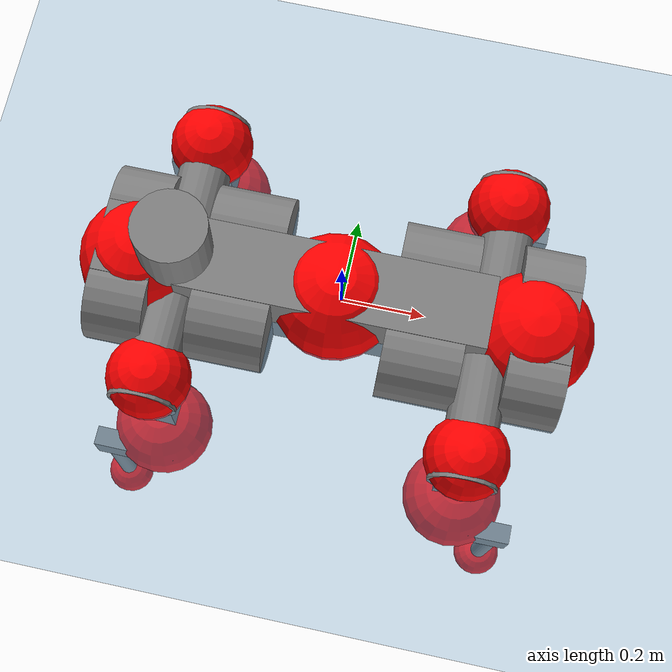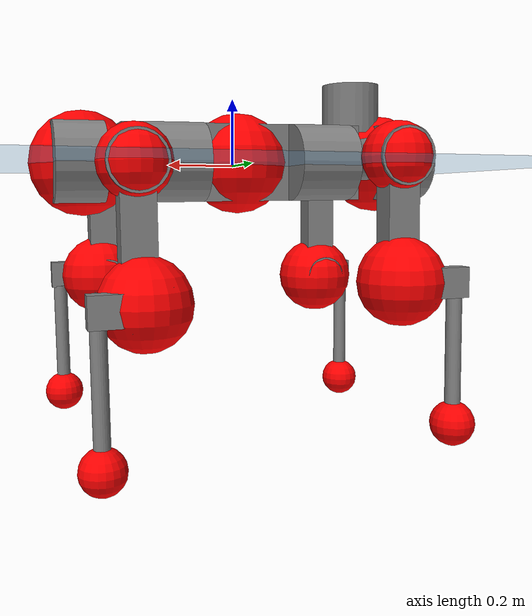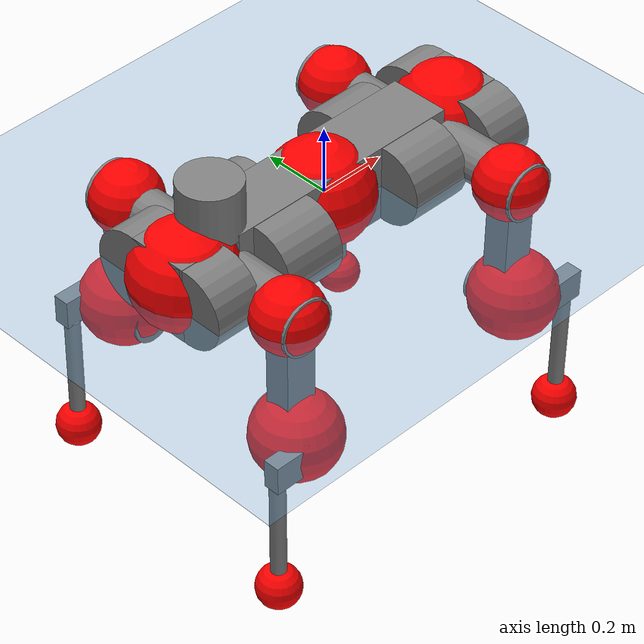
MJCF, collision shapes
<mujoco model="anymal_c">
  <compiler angle="radian" assetdir="assets" balanceinertia="true" inertiafromgeom="false"/>

  <option timestep="0.005" density="1.2" viscosity="2e-05"/>

  <size nkey="1"/>

  <visual>
    <quality shadowsize="8192"/>
    <map shadowclip="0.5"/>
  </visual>

  <default>
    <default class="/">
      <material specular="0" shininess="0.25"/>
      <geom contype="0" conaffinity="0" group="1" solref="-1000 -80"/>
      <site size="0.01 0.005 0.005" group="5"/>
      <general forcelimited="true" forcerange="-80 80" biastype="affine" gainprm="80" biasprm="0 -80 -2"/>
      <default class="anymal_c">
        <joint armature="0.01" damping="0.01" frictionloss="0.1"/>
        <default class="visual">
          <geom type="mesh" group="2"/>
          <default class="visual_zflip"/>
        </default>
        <default class="collision">
          <geom type="cylinder" group="3"/>
          <default class="foot">
            <geom size="0.03 0 0" type="sphere" condim="6" priority="1" friction="0.8 0.02 0.01" solimp="0.015 1 0.03"/>
          </default>
        </default>
      </default>
      <default class="reward_collision_sphere">
        <geom group="5" rgba="1 0 0 1"/>
      </default>
    </default>
  </default>

  <asset>
    <texture type="skybox" colorspace="auto" name="//unnamed_texture_0" builtin="gradient" rgb1="0.95 0.95 0.95" rgb2="0.95 0.95 0.95" width="100" height="600"/>
    <texture type="2d" colorspace="auto" name="texplane" builtin="checker" rgb1="0.345 0.575 0.748" rgb2="0.345 0.575 0.748" markrgb="1 1 1" width="512" height="512"/>
    <texture type="2d" colorspace="linear" name="base" file="base.png"/>
    <texture type="2d" colorspace="linear" name="top_shell" file="top_shell.png"/>
    <texture type="2d" colorspace="linear" name="bottom_shell" file="bottom_shell.png"/>
    <texture type="2d" colorspace="linear" name="remote" file="remote.png"/>
    <texture type="2d" colorspace="linear" name="hatch" file="hatch.png"/>
    <texture type="2d" colorspace="linear" name="handle" file="handle.png"/>
    <texture type="2d" colorspace="linear" name="face" file="face.png"/>
    <texture type="2d" colorspace="linear" name="battery" file="battery.png"/>
    <texture type="2d" colorspace="linear" name="lidar_cage" file="lidar_cage.png"/>
    <texture type="2d" colorspace="linear" name="depth_camera" file="depth_camera.png"/>
    <texture type="2d" colorspace="linear" name="wide_angle_camera" file="wide_angle_camera.png"/>
    <texture type="2d" colorspace="linear" name="lidar" file="lidar.png"/>
    <texture type="2d" colorspace="linear" name="drive" file="drive.png"/>
    <texture type="2d" colorspace="linear" name="hip_l" file="hip_l.png"/>
    <texture type="2d" colorspace="linear" name="shank_l" file="shank_l.png"/>
    <texture type="2d" colorspace="linear" name="foot" file="foot.png"/>
    <texture type="2d" colorspace="linear" name="thigh" file="thigh.png"/>
    <texture type="2d" colorspace="linear" name="shank_r" file="shank_r.png"/>
    <texture type="2d" colorspace="linear" name="hip_r" file="hip_r.png"/>
    <material name="MatPlane" class="/" texture="texplane" texuniform="true" texrepeat="2 2" specular="0.9" shininess="0.5"/>
    <material name="black_plastic" class="/" rgba="0.007 0.007 0.007 1"/>
    <material name="green" class="/" rgba="0.052 0.178 0.033 1"/>
    <material name="red" class="/" rgba="0.178 0.006 0.005 1"/>
    <material name="yellow" class="/" rgba="0.178 0.119 0.006 1"/>
    <material name="lwl" class="/" rgba="0.8 0.8 0.8 1"/>
    <material name="base" class="/" texture="base"/>
    <material name="top_shell" class="/" texture="top_shell"/>
    <material name="bottom_shell" class="/" texture="bottom_shell"/>
    <material name="hip_l" class="/" texture="hip_l"/>
    <material name="thigh" class="/" texture="thigh"/>
    <material name="shank_l" class="/" texture="shank_l"/>
    <material name="foot" class="/" texture="foot"/>
    <material name="hip_r" class="/" texture="hip_r"/>
    <material name="shank" class="/" texture="shank_r"/>
    <material name="hatch" class="/" texture="hatch"/>
    <material name="remote" class="/" texture="remote"/>
    <material name="handle" class="/" texture="handle"/>
    <material name="face" class="/" texture="face"/>
    <material name="depth_camera" class="/" texture="depth_camera"/>
    <material name="wide_angle_camera" class="/" texture="wide_angle_camera"/>
    <material name="battery" class="/" texture="battery"/>
    <material name="lidar_cage" class="/" texture="lidar_cage"/>
    <material name="lidar" class="/" texture="lidar"/>
    <material name="drive" class="/" texture="drive"/>
    <mesh name="base_0" class="/" file="base_0.obj"/>
    <mesh name="base_1" class="/" file="base_1.obj"/>
    <mesh name="base_2" class="/" file="base_2.obj"/>
    <mesh name="base_3" class="/" file="base_3.obj"/>
    <mesh name="base_4" class="/" file="base_4.obj"/>
    <mesh name="base_5" class="/" file="base_5.obj"/>
    <mesh name="top_shell" class="/" file="top_shell.obj"/>
    <mesh name="bottom_shell" class="/" file="bottom_shell.obj"/>
    <mesh name="remote" class="/" file="remote.obj"/>
    <mesh name="handle" class="/" file="handle.obj"/>
    <mesh name="face" class="/" file="face.obj"/>
    <mesh name="wide_angle_camera" class="/" file="wide_angle_camera.obj"/>
    <mesh name="depth_camera" class="/" file="depth_camera.obj"/>
    <mesh name="battery" class="/" file="battery.obj"/>
    <mesh name="lidar_cage" class="/" file="lidar_cage.obj"/>
    <mesh name="lidar" class="/" file="lidar.obj"/>
    <mesh name="drive" class="/" file="drive.obj"/>
    <mesh name="hip_l" class="/" file="hip_l.obj"/>
    <mesh name="thigh" class="/" file="thigh.obj"/>
    <mesh name="shank_l" class="/" file="shank_l.obj"/>
    <mesh name="foot" class="/" file="foot.obj"/>
    <mesh name="hip_r" class="/" file="hip_r.obj"/>
    <mesh name="hatch" class="/" file="hatch.obj"/>
    <mesh name="shank_r" class="/" file="shank_r.obj"/>
  </asset>

  <worldbody>
    <geom name="floor" class="/" size="100 100 0.125" type="plane" group="0" material="MatPlane"/>
    <light name="toplight_shadow" class="/" pos="0 0 5" dir="0.0990148 0.0990148 -0.990148" type="directional" ambient="0.04 0.04 0.04" diffuse="0.55 0.55 0.55" specular="0.12 0.12 0.12"/>
    <light name="toplight_fill" class="/" pos="0 0 5" dir="0.0990148 0.0990148 -0.990148" type="directional" castshadow="false" ambient="0.04 0.04 0.04" diffuse="0.3 0.3 0.3" specular="0.08 0.08 0.08"/>
    <body name="trunk" childclass="anymal_c" pos="-0.0154448 0.00126105 0.00775208" quat="0.999976 -0.00313362 0.00561013 0.00276226">
      <inertial pos="0.0173315 -0.00743943 0.0672514" quat="0.512736 0.489098 0.496985 0.50089" mass="42.5825" diaginertia="0.715137 3.88343 0.632325"/>
      <joint name="//unnamed_joint_0" type="free" armature="0" damping="0" frictionloss="0"/>
      <geom name="//unnamed_geom_1" class="visual" material="green" mesh="base_0"/>
      <geom name="//unnamed_geom_2" class="visual" material="yellow" mesh="base_1"/>
      <geom name="//unnamed_geom_3" class="visual" material="red" mesh="base_2"/>
      <geom name="//unnamed_geom_4" class="visual" material="black_plastic" mesh="base_3"/>
      <geom name="//unnamed_geom_5" class="visual" material="lwl" mesh="base_4"/>
      <geom name="//unnamed_geom_6" class="visual" material="base" mesh="base_5"/>
      <geom name="trunk_1" class="collision" size="0.367225 0.0886404 0.113966" type="box"/>
      <geom name="trunk_2" class="collision" size="0.113966 0.0918061" pos="0.226564 0.103299 0" quat="0.707107 0 0.707107 0"/>
      <geom name="trunk_3" class="collision" size="0.113966 0.0918061" pos="-0.226564 0.103299 0" quat="0.707107 0 0.707107 0"/>
      <geom name="trunk_4" class="collision" size="0.113966 0.0918061" pos="0.226564 -0.103299 0" quat="0.707107 0 0.707107 0"/>
      <geom name="trunk_5" class="collision" size="0.113966 0.0918061" pos="-0.226564 -0.103299 0" quat="0.707107 0 0.707107 0"/>
      <geom name="//unnamed_geom_12" class="visual" material="top_shell" mesh="top_shell"/>
      <geom name="//unnamed_geom_13" class="visual" material="bottom_shell" mesh="bottom_shell"/>
      <geom name="//unnamed_geom_14" class="visual" material="remote" mesh="remote"/>
      <geom name="//unnamed_geom_15" class="visual" material="handle" mesh="handle"/>
      <geom name="//unnamed_geom_16" class="visual" pos="0.431774 0 0" quat="1 0 0 0" material="face" mesh="face"/>
      <geom name="trunk_6" class="collision" size="0.069646 0.0886404 0.113966" pos="0.489066 0 0" type="box"/>
      <geom name="//unnamed_geom_18" class="collision" size="0.113966 0.069646" pos="0.489066 0.103299 0" quat="0.707107 0 0.707107 0"/>
      <geom name="//unnamed_geom_19" class="collision" size="0.113966 0.069646" pos="0.489066 -0.103299 0" quat="0.707107 0 0.707107 0"/>
      <geom name="//unnamed_geom_20" class="visual" pos="0.480899 0 -0.0392424" quat="0.965926 0 0.258819 0" material="depth_camera" mesh="depth_camera"/>
      <geom name="//unnamed_geom_21" class="visual" pos="0.534379 0 0.019184" material="wide_angle_camera" mesh="wide_angle_camera"/>
      <geom name="//unnamed_geom_22" class="visual_zflip" pos="-0.431774 0 0" quat="0 0 0 1" material="face" mesh="face"/>
      <geom name="trunk_7" class="collision" size="0.069646 0.0886404 0.113966" pos="-0.489066 0 0" quat="0 0 0 1" type="box"/>
      <geom name="//unnamed_geom_24" class="collision" size="0.113966 0.069646" pos="-0.489066 -0.103299 0" quat="0 -0.707107 0 0.707107"/>
      <geom name="//unnamed_geom_25" class="collision" size="0.113966 0.069646" pos="-0.489066 0.103299 0" quat="0 -0.707107 0 0.707107"/>
      <geom name="//unnamed_geom_26" class="visual" pos="-0.480899 0 -0.0392424" quat="0 -0.258819 0 0.965926" material="depth_camera" mesh="depth_camera"/>
      <geom name="//unnamed_geom_27" class="visual_zflip" pos="-0.534379 0 0.019184" quat="0 0 0 1" material="wide_angle_camera" mesh="wide_angle_camera"/>
      <geom name="//unnamed_geom_28" class="visual" material="battery" mesh="battery"/>
      <geom name="//unnamed_geom_29" class="visual" pos="0 0.118538 0.0354048" quat="0.683013 -0.183013 0.183013 0.683013" material="depth_camera" mesh="depth_camera"/>
      <geom name="//unnamed_geom_30" class="visual" pos="0 -0.118538 0.0354048" quat="0.683013 0.183013 0.183013 -0.683013" material="depth_camera" mesh="depth_camera"/>
      <geom name="//unnamed_geom_31" class="visual" pos="-0.37917 0 0.09419" quat="1 0 0 0" material="lidar_cage" mesh="lidar_cage"/>
      <geom name="trunk_8" class="collision" size="0.0886404 0.0759775" pos="-0.37917 0 0.17108"/>
      <geom name="//unnamed_geom_33" class="visual" pos="-0.37917 0.000170518 0.182229" quat="0.707107 0 0 -0.707107" material="lidar" mesh="lidar"/>
      <geom name="//unnamed_geom_34" class="visual" pos="0.312398 0.153404 3.35008e-09" quat="0.258819 0.965926 0 0" material="drive" mesh="drive"/>
      <geom name="//unnamed_geom_35" class="visual" pos="0.312398 -0.153404 -3.35008e-09" quat="0.258819 -0.965926 0 0" material="drive" mesh="drive"/>
      <geom name="//unnamed_geom_36" class="visual" pos="-0.312398 0.153404 -3.35008e-09" quat="0 0 0.965926 -0.258819" material="drive" mesh="drive"/>
      <geom name="//unnamed_geom_37" class="visual" pos="-0.312398 -0.153404 3.35008e-09" quat="0 0 -0.965926 -0.258819" material="drive" mesh="drive"/>
      <geom name="//unnamed_geom_38" class="visual" pos="0.120834 0 0.0935493" quat="1 0 0 0" material="hatch" mesh="hatch"/>
      <geom name="//unnamed_geom_39" class="reward_collision_sphere" size="0.151955"/>
      <geom name="//unnamed_geom_40" class="reward_collision_sphere" size="0.151955" pos="0.468754 0 0"/>
      <geom name="//unnamed_geom_41" class="reward_collision_sphere" size="0.151955" pos="-0.468754 0 0"/>
      <site name="imu" pos="0.26677 -0.0310396 -0.00840869" size="0.0126629"/>
      <camera name="track" pos="0 -2.95141 0" quat="0.707107 0.707107 0 0" mode="trackcom"/>
      <camera name="ego_camera" pos="0.468754 0 -0.0512599" quat="-0.5 -0.5 0.5 0.5"/>
      <body name="LF_HIP" pos="0.31309 0.158581 -0.00698616" quat="0.257445 0.966287 -0.00348023 0.000101136">
        <inertial pos="0.0549894 -0.0115823 -0.0080663" quat="-0.126676 0.705255 -0.142658 0.682801" mass="5.87941" diaginertia="0.00549502 0.0292759 0.0113026"/>
        <joint name="LF_HAA" pos="0 0 0" axis="0.997112 0.0739645 -0.017248" stiffness="0.0320221" range="-1.01895 0.532333" armature="0.01349" damping="0" frictionloss="0.133229"/>
        <geom name="//unnamed_geom_42" class="visual" pos="0 0.00019707 -3.23686e-05" quat="0.258819 -0.965926 0 0" material="hip_l" mesh="hip_l"/>
        <geom name="//unnamed_geom_43" class="visual" pos="0.0623963 -0.0812521 -0.0454744" quat="0.183013 -0.683013 0.683013 0.183013" material="drive" mesh="drive"/>
        <geom name="//unnamed_geom_44" class="collision" size="0.0633146 0.0886404" pos="0.0623963 -0.0176491 -0.00884874" quat="-0.353553 -0.612372 0.612372 -0.353553"/>
        <body name="LF_THIGH" pos="0.0543105 -0.108837 -0.0625514" quat="0.186278 -0.685057 0.681328 0.178294">
          <inertial pos="0.0213433 0.00989773 -0.301044" quat="0.993199 -0.00515216 -0.0805618 0.083904" mass="7.18024" diaginertia="0.0379639 0.233902 0.0131833"/>
          <joint name="LF_HFE" pos="0 0 0" axis="0.999562 -0.028684 0.00734775" stiffness="0.0785421" range="-3.28903 3.12754" armature="0.0173547" damping="0.0106129" frictionloss="0.164962"/>
          <geom name="//unnamed_geom_45" class="visual" pos="-0.00863546 -1.36075e-05 0" quat="0.707107 0 0 -0.707107" material="thigh" mesh="thigh"/>
          <geom name="//unnamed_geom_46" class="collision" size="0.082309 0.0506517" pos="0.041667 0 0" quat="0.5 0.5 -0.5 -0.5"/>
          <geom name="//unnamed_geom_47" class="collision" size="0.0474859 0.0379887 0.178945" pos="0.0312502 0 -0.181093" quat="0.707107 0 0 -0.707107" type="box"/>
          <geom name="//unnamed_geom_48" class="visual" pos="0.10448 0 -0.365227" quat="1 0 0 0" material="drive" mesh="drive"/>
          <geom name="//unnamed_geom_49" class="collision" size="0.0633146 0.0886404" pos="0.0315627 0 -0.365227" quat="0.707107 0 0.707107 0"/>
          <geom name="//unnamed_geom_50" class="reward_collision_sphere" size="0.101303" pos="0.0260419 0 0"/>
          <body name="LF_SHANK" pos="0.102268 0.0139394 -0.366164" quat="0.999988 0.000661739 0.00197325 0.00434162">
            <inertial pos="0.0178667 -0.0911627 -0.113569" quat="0.996023 -0.0864265 0.0120052 -0.0180202" mass="1.14538" diaginertia="0.0111567 0.0454951 0.00289689"/>
            <joint name="LF_KFE" pos="0 0 0" axis="0.999538 -0.0217624 -0.0212306" range="-2.86379 3.1207" armature="0.00783486" damping="0.073607" frictionloss="0.0734112"/>
            <geom name="//unnamed_geom_51" class="visual" pos="-0.00281583 -0.0150142 0" quat="0.707107 0 0 -0.707107" material="shank_l" mesh="shank_l"/>
            <geom name="LF_kfe_act" class="collision" size="0.0759775 0.0253258" pos="0.0208335 0 0" quat="0.5 0.5 -0.5 -0.5"/>
            <geom name="//unnamed_geom_53" class="collision" size="0.0728105 0.0427373 0.0240595" pos="0.0208335 -0.0848515 0" quat="0.5 0.5 -0.5 -0.5" type="box"/>
            <geom name="//unnamed_geom_54" class="visual" pos="0.0135945 -0.134627 -0.433107" quat="0.382683 0 0 -0.92388" material="foot" mesh="foot"/>
            <geom name="LF_calf" class="collision" size="0.0221601 0.178866" pos="0.0135939 -0.129788 -0.216554" quat="0.707107 0 0 -0.707107"/>
            <geom name="LF_foot" class="foot" size="0.0272938" pos="0.0135939 -0.129788 -0.404274" quat="0.707107 0 0 -0.707107"/>
            <geom name="//unnamed_geom_57" class="reward_collision_sphere" size="0.126629" pos="-0.0520837 0 0"/>
            <geom name="//unnamed_geom_58" class="reward_collision_sphere" size="0.0633146" pos="0.0135939 -0.129788 -0.404274"/>
            <site name="LF_foot" class="foot" pos="0.0135939 -0.129788 -0.404274" quat="0.707107 0 0 -0.707107" size="0.0126629"/>
          </body>
        </body>
      </body>
      <body name="RF_HIP" pos="0.30994 -0.158701 0.0140965" quat="0.262018 -0.965052 -0.00100344 0.00460619">
        <inertial pos="0.0507998 0.0357054 -0.0118139" quat="0.138897 0.659566 0.0748445 0.7349" mass="5.69142" diaginertia="0.00910481 0.0384422 0.0141998"/>
        <joint name="RF_HAA" pos="0 0 0" axis="0.999091 0.0390456 -0.0171297" stiffness="0.0224831" range="-0.608592 0.738668" armature="0.00960415" damping="0.000263153" frictionloss="0.206388"/>
        <geom name="//unnamed_geom_59" class="visual" pos="0 -0.000197069 -3.23685e-05" quat="0.258819 0.965926 0 0" material="hip_r" mesh="hip_r"/>
        <geom name="//unnamed_geom_60" class="visual" pos="0.0623963 0.0812521 -0.0454744" quat="0.183013 0.683013 0.683013 -0.183013" material="drive" mesh="drive"/>
        <geom name="//unnamed_geom_61" class="collision" size="0.0633146 0.0886404" pos="0.0623963 0.0176491 -0.00884874" quat="-0.353553 0.612372 0.612372 0.353553"/>
        <body name="RF_THIGH" pos="0.0636089 0.122348 -0.0554423" quat="0.183061 0.682905 0.683099 -0.183044">
          <inertial pos="0.0232945 0.0114515 -0.313088" quat="0.992247 -0.0365217 -0.0475426 0.108862" mass="6.0287" diaginertia="0.0416356 0.246312 0.0134372"/>
          <joint name="RF_HFE" pos="0 0 0" axis="0.999997 0.000574633 -0.00216317" stiffness="0.0450552" range="-3.09271 2.90051" armature="0.0121462" damping="0.0283535" frictionloss="0.0801311"/>
          <geom name="//unnamed_geom_62" class="visual" pos="-0.00863546 -1.36075e-05 0" quat="0.707107 0 0 -0.707107" material="thigh" mesh="thigh"/>
          <geom name="//unnamed_geom_63" class="collision" size="0.082309 0.0506517" pos="0.041667 0 0" quat="0.5 0.5 0.5 0.5"/>
          <geom name="//unnamed_geom_64" class="collision" size="0.0474859 0.0379887 0.178945" pos="0.0312502 0 -0.181093" quat="0.707107 0 0 0.707107" type="box"/>
          <geom name="//unnamed_geom_65" class="visual" pos="0.10448 0 -0.365227" quat="1 0 0 0" material="drive" mesh="drive"/>
          <geom name="//unnamed_geom_66" class="collision" size="0.0633146 0.0886404" pos="0.0315627 0 -0.365227" quat="0.707107 0 0.707107 0"/>
          <geom name="//unnamed_geom_67" class="reward_collision_sphere" size="0.101303" pos="0.0260419 0 0"/>
          <body name="RF_SHANK" pos="0.10599 0.0118848 -0.359485" quat="1 -0.000246896 0.000345082 -6.46774e-05">
            <inertial pos="0.0049564 0.0893146 -0.103186" quat="0.987165 0.142567 -0.0604454 0.0390721" mass="1.21681" diaginertia="0.0124286 0.0657047 0.0044386"/>
            <joint name="RF_KFE" pos="0 0 0" axis="0.997391 -0.00689424 0.0718551" stiffness="0.0640625" range="-3.15708 2.92653" armature="0.0165327" damping="0" frictionloss="0.169679"/>
            <geom name="//unnamed_geom_68" class="visual" pos="-0.00281582 0.0150141 0" quat="0.707107 0 0 0.707107" material="shank" mesh="shank_r"/>
            <geom name="RF_kfe_act" class="collision" size="0.0759775 0.0253258" pos="0.0208335 0 0" quat="0.5 0.5 0.5 0.5"/>
            <geom name="//unnamed_geom_70" class="collision" size="0.0728105 0.0427373 0.0240595" pos="0.0208335 0.0848515 0" quat="0.5 0.5 0.5 0.5" type="box"/>
            <geom name="//unnamed_geom_71" class="visual" pos="0.0135932 0.134627 -0.433107" quat="0.382683 0 0 0.92388" material="foot" mesh="foot"/>
            <geom name="RF_calf" class="collision" size="0.0221601 0.178866" pos="0.0135939 0.129788 -0.216554" quat="0.707107 0 0 0.707107"/>
            <geom name="RF_foot" class="foot" size="0.0453831" pos="0.0135939 0.129788 -0.404274" quat="0.707107 0 0 0.707107"/>
            <geom name="//unnamed_geom_74" class="reward_collision_sphere" size="0.126629" pos="-0.0520837 0 0"/>
            <geom name="//unnamed_geom_75" class="reward_collision_sphere" size="0.0633146" pos="0.0135939 0.129788 -0.404274"/>
            <site name="RF_foot" class="foot" pos="0.0135939 0.129788 -0.404274" quat="0.707107 0 0 0.707107" size="0.0126629"/>
          </body>
        </body>
      </body>
      <body name="LH_HIP" pos="-0.312692 0.154093 0.0111428" quat="2.83803e-06 -5.75451e-07 0.965924 -0.258828">
        <inertial pos="0.0526717 0.0080736 0.000436342" quat="0.107869 0.70447 0.188544 0.675676" mass="4.41197" diaginertia="0.0066913 0.0327975 0.00896852"/>
        <joint name="LH_HAA" pos="0 0 0" axis="1 -0.000323308 -0.000123315" range="-0.438585 0.904985" armature="0.0197544" damping="0.0302405" frictionloss="0.0423318"/>
        <geom name="//unnamed_geom_76" class="visual" pos="0 -0.000197069 -3.23685e-05" quat="-0.258819 -0.965926 0 0" material="hip_r" mesh="hip_r"/>
        <geom name="//unnamed_geom_77" class="visual" pos="0.0623963 0.0812521 -0.0454744" quat="0.183013 0.683013 0.683013 -0.183013" material="drive" mesh="drive"/>
        <geom name="//unnamed_geom_78" class="collision" size="0.0633146 0.0886404" pos="0.0623963 0.0176491 -0.00884874" quat="-0.353553 0.612372 0.612372 0.353553"/>
        <body name="LH_THIGH" pos="0.0624435 0.120041 -0.0669658" quat="0.182783 0.682821 0.682949 -0.184191">
          <inertial pos="0.033073 -0.0010729 -0.318042" quat="0.991678 -0.0327996 -0.0928391 0.0829458" mass="4.78545" diaginertia="0.0345396 0.188634 0.0118747"/>
          <joint name="LH_HFE" pos="0 0 0" axis="0.998898 0.0310606 0.0351727" range="-3.16133 3.11495" armature="0.00602378" damping="0.0558367" frictionloss="0.130209"/>
          <geom name="//unnamed_geom_79" class="visual" pos="-0.00863546 -1.36075e-05 0" quat="0.707107 0 0 -0.707107" material="thigh" mesh="thigh"/>
          <geom name="//unnamed_geom_80" class="collision" size="0.082309 0.0506517" pos="0.041667 0 0" quat="0.5 0.5 -0.5 -0.5"/>
          <geom name="//unnamed_geom_81" class="collision" size="0.0474859 0.0379887 0.178945" pos="0.0312502 0 -0.181093" quat="0.707107 0 0 -0.707107" type="box"/>
          <geom name="//unnamed_geom_82" class="visual" pos="0.10448 0 -0.365227" quat="1 0 0 0" material="drive" mesh="drive"/>
          <geom name="//unnamed_geom_83" class="collision" size="0.0633146 0.0886404" pos="0.0315627 0 -0.365227" quat="0.707107 0 0.707107 0"/>
          <geom name="//unnamed_geom_84" class="reward_collision_sphere" size="0.101303" pos="0.0260419 0 0"/>
          <body name="LH_SHANK" pos="0.105213 -0.000658226 -0.351179" quat="0.999998 -0.000358335 0.000276662 -0.0018494">
            <inertial pos="0.0117832 0.0753819 -0.104602" quat="0.991197 0.122005 -0.0426983 0.0286406" mass="1.10911" diaginertia="0.0128085 0.0592086 0.00426538"/>
            <joint name="LH_KFE" pos="0 0 0" axis="0.999872 -0.0159374 0.0014467" stiffness="0.0775232" range="-3.16855 2.99138" armature="0.00749926" damping="0.0545038" frictionloss="0.0334617"/>
            <geom name="//unnamed_geom_85" class="visual" pos="-0.00281582 0.0150141 0" quat="-0.707107 0 0 -0.707107" material="shank" mesh="shank_r"/>
            <geom name="LH_kfe_act" class="collision" size="0.0759775 0.0253258" pos="0.0208335 0 0" quat="0.5 0.5 -0.5 -0.5"/>
            <geom name="//unnamed_geom_87" class="collision" size="0.0728105 0.0427373 0.0240595" pos="0.0208335 0.0848515 0" quat="0.5 0.5 -0.5 -0.5" type="box"/>
            <geom name="//unnamed_geom_88" class="visual" pos="0.0135932 0.134627 -0.433107" quat="-0.382683 0 0 -0.92388" material="foot" mesh="foot"/>
            <geom name="LH_calf" class="collision" size="0.0221601 0.178866" pos="0.0135939 0.129788 -0.216554" quat="0.707107 0 0 -0.707107"/>
            <geom name="LH_foot" class="foot" size="0.0495134" pos="0.0135939 0.129788 -0.404274" quat="0.707107 0 0 -0.707107"/>
            <geom name="//unnamed_geom_91" class="reward_collision_sphere" size="0.126629" pos="-0.0520837 0 0"/>
            <geom name="//unnamed_geom_92" class="reward_collision_sphere" size="0.0633146" pos="0.0135939 0.129788 -0.404274"/>
            <site name="LH_foot" class="foot" pos="0.0135939 0.129788 -0.404274" quat="0.707107 0 0 -0.707107" size="0.0126629"/>
          </body>
        </body>
      </body>
      <body name="RH_HIP" pos="-0.318405 -0.145187 0.00329794" quat="-0.00257108 -0.00541027 -0.966951 -0.254893">
        <inertial pos="0.0442195 -0.0336763 0.00406742" quat="-0.147809 0.728495 -0.0934364 0.662357" mass="5.77645" diaginertia="0.0072625 0.0350315 0.0117534"/>
        <joint name="RH_HAA" pos="0 0 0" axis="0.997124 0.0727234 -0.0213144" range="-0.842886 0.432525" armature="0.0179801" damping="0.025653" frictionloss="0.104393"/>
        <geom name="//unnamed_geom_93" class="visual" pos="0 0.00019707 -3.23686e-05" quat="-0.258819 0.965926 0 0" material="hip_l" mesh="hip_l"/>
        <geom name="//unnamed_geom_94" class="visual" pos="0.0623963 -0.0812521 -0.0454744" quat="-0.183013 0.683013 -0.683013 -0.183013" material="drive" mesh="drive"/>
        <geom name="//unnamed_geom_95" class="collision" size="0.0633146 0.0886404" pos="0.0623963 -0.0176491 -0.00884874" quat="0.353553 0.612372 -0.612372 0.353553"/>
        <body name="RH_THIGH" pos="0.0671338 -0.105389 -0.0388317" quat="-0.182303 0.682722 -0.683547 -0.182808">
          <inertial pos="0.0345029 0.000680164 -0.315389" quat="0.993413 -0.00523453 -0.0789365 0.0828989" mass="7.27435" diaginertia="0.0388094 0.184303 0.0147383"/>
          <joint name="RH_HFE" pos="0 0 0" axis="0.999835 -0.00264722 0.0179766" range="-3.12235 2.8849" armature="0.0139042" damping="0.0103982" frictionloss="0.104005"/>
          <geom name="//unnamed_geom_96" class="visual" pos="-0.00863546 -1.36075e-05 0" quat="0.707107 0 0 -0.707107" material="thigh" mesh="thigh"/>
          <geom name="//unnamed_geom_97" class="collision" size="0.082309 0.0506517" pos="0.041667 0 0" quat="0.5 0.5 0.5 0.5"/>
          <geom name="//unnamed_geom_98" class="collision" size="0.0474859 0.0379887 0.178945" pos="0.0312502 0 -0.181093" quat="0.707107 0 0 0.707107" type="box"/>
          <geom name="//unnamed_geom_99" class="visual" pos="0.10448 0 -0.365227" quat="1 0 0 0" material="drive" mesh="drive"/>
          <geom name="//unnamed_geom_100" class="collision" size="0.0633146 0.0886404" pos="0.0315627 0 -0.365227" quat="0.707107 0 0.707107 0"/>
          <geom name="//unnamed_geom_101" class="reward_collision_sphere" size="0.101303" pos="0.0260419 0 0"/>
          <body name="RH_SHANK" pos="0.101603 -0.000155901 -0.373115" quat="1 -0.000407397 0.000201725 -0.000465022">
            <inertial pos="0.0166244 -0.0926957 -0.103543" quat="0.993328 -0.100554 0.0343554 -0.0448212" mass="1.19786" diaginertia="0.011307 0.0637008 0.00323698"/>
            <joint name="RH_KFE" pos="0 0 0" axis="0.99771 0.0148802 0.0659862" range="-3.01649 3.1297" armature="0.0157057" damping="0" frictionloss="0.157253"/>
            <geom name="//unnamed_geom_102" class="visual" pos="-0.00281583 -0.0150142 0" quat="0.707107 0 0 -0.707107" material="shank_l" mesh="shank_l"/>
            <geom name="RH_kfe_act" class="collision" size="0.0759775 0.0253258" pos="0.0208335 0 0" quat="0.5 0.5 0.5 0.5"/>
            <geom name="//unnamed_geom_104" class="collision" size="0.0728105 0.0427373 0.0240595" pos="0.0208335 -0.0848515 0" quat="0.5 0.5 0.5 0.5" type="box"/>
            <geom name="//unnamed_geom_105" class="visual" pos="0.0135945 -0.134627 -0.433107" quat="0.382683 0 0 -0.92388" material="foot" mesh="foot"/>
            <geom name="RH_calf" class="collision" size="0.0221601 0.178866" pos="0.0135939 -0.129788 -0.216554" quat="0.707107 0 0 0.707107"/>
            <geom name="RH_foot" class="foot" size="0.055983" pos="0.0135939 -0.129788 -0.404274" quat="0.707107 0 0 0.707107"/>
            <geom name="//unnamed_geom_108" class="reward_collision_sphere" size="0.126629" pos="-0.0520837 0 0"/>
            <geom name="//unnamed_geom_109" class="reward_collision_sphere" size="0.0633146" pos="0.0135939 -0.129788 -0.404274"/>
            <site name="RH_foot" class="foot" pos="0.0135939 -0.129788 -0.404274" quat="0.707107 0 0 0.707107" size="0.0126629"/>
          </body>
        </body>
      </body>
    </body>
  </worldbody>

  <contact>
    <pair class="/" geom1="floor" geom2="LF_foot" name="//unnamed_contact_0"/>
    <pair class="/" geom1="floor" geom2="RF_foot" name="//unnamed_contact_1"/>
    <pair class="/" geom1="floor" geom2="LH_foot" name="//unnamed_contact_2"/>
    <pair class="/" geom1="floor" geom2="RH_foot" name="//unnamed_contact_3"/>
  </contact>

  <actuator>
    <general name="LF_HAA" class="/" joint="LF_HAA" forcerange="-103.749 103.749" gainprm="78.5708" biasprm="0 -78.5708 -3.19772"/>
    <general name="LF_HFE" class="/" joint="LF_HFE" forcerange="-133.58 133.58" gainprm="78.5708" biasprm="0 -78.5708 -3.19772"/>
    <general name="LF_KFE" class="/" joint="LF_KFE" forcerange="-110.546 110.546" gainprm="78.5708" biasprm="0 -78.5708 -3.19772"/>
    <general name="RF_HAA" class="/" joint="RF_HAA" forcerange="-104.018 104.018" gainprm="78.5708" biasprm="0 -78.5708 -3.19772"/>
    <general name="RF_HFE" class="/" joint="RF_HFE" forcerange="-69.5175 69.5175" gainprm="78.5708" biasprm="0 -78.5708 -3.19772"/>
    <general name="RF_KFE" class="/" joint="RF_KFE" forcerange="-99.8006 99.8006" gainprm="78.5708" biasprm="0 -78.5708 -3.19772"/>
    <general name="LH_HAA" class="/" joint="LH_HAA" forcerange="-46.503 46.503" gainprm="78.5708" biasprm="0 -78.5708 -3.19772"/>
    <general name="LH_HFE" class="/" joint="LH_HFE" forcerange="-132.099 132.099" gainprm="78.5708" biasprm="0 -78.5708 -3.19772"/>
    <general name="LH_KFE" class="/" joint="LH_KFE" forcerange="-156.102 156.102" gainprm="78.5708" biasprm="0 -78.5708 -3.19772"/>
    <general name="RH_HAA" class="/" joint="RH_HAA" forcerange="-140.019 140.019" gainprm="78.5708" biasprm="0 -78.5708 -3.19772"/>
    <general name="RH_HFE" class="/" joint="RH_HFE" forcerange="-48.1838 48.1838" gainprm="78.5708" biasprm="0 -78.5708 -3.19772"/>
    <general name="RH_KFE" class="/" joint="RH_KFE" forcerange="-91.7193 91.7193" gainprm="78.5708" biasprm="0 -78.5708 -3.19772"/>
  </actuator>

  <sensor>
    <gyro site="imu" name="imu_angular_velocity"/>
    <velocimeter site="imu" name="imu_linear_velocity"/>
    <framelinvel objtype="site" objname="LF_foot" name="LF_foot_global_linear_velocity"/>
    <framelinvel objtype="site" objname="RF_foot" name="RF_foot_global_linear_velocity"/>
    <framelinvel objtype="site" objname="LH_foot" name="LH_foot_global_linear_velocity"/>
    <framelinvel objtype="site" objname="RH_foot" name="RH_foot_global_linear_velocity"/>
  </sensor>

  <keyframe>
    <key name="home" qpos="0 0 0.55 1 0 0 0 0 0.4 -0.8 0 -0.4 0.8 0 -0.4 0.8 0 0.4 -0.8"/>
  </keyframe>
</mujoco>
